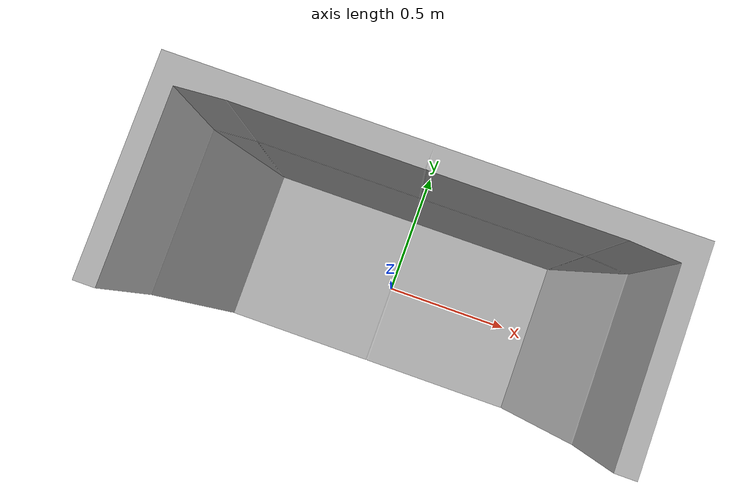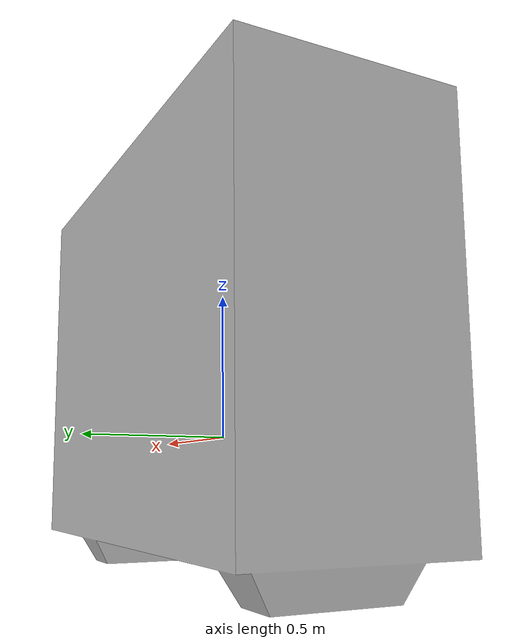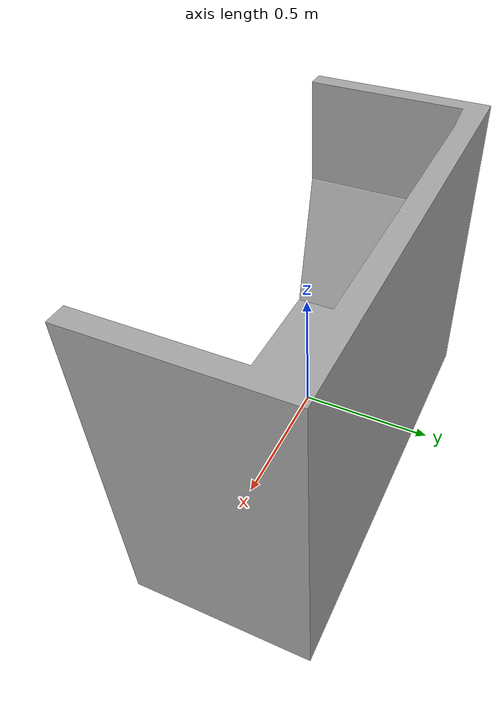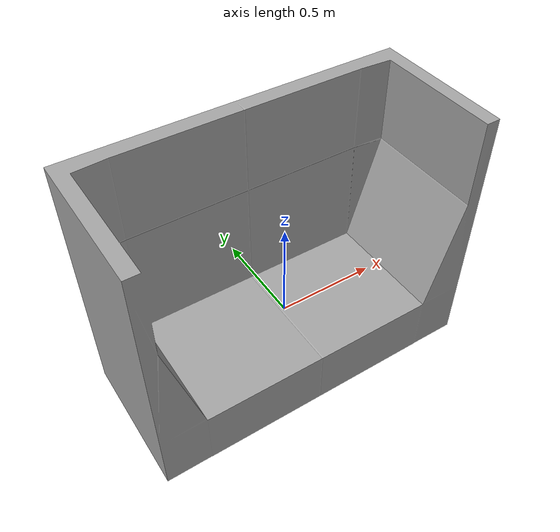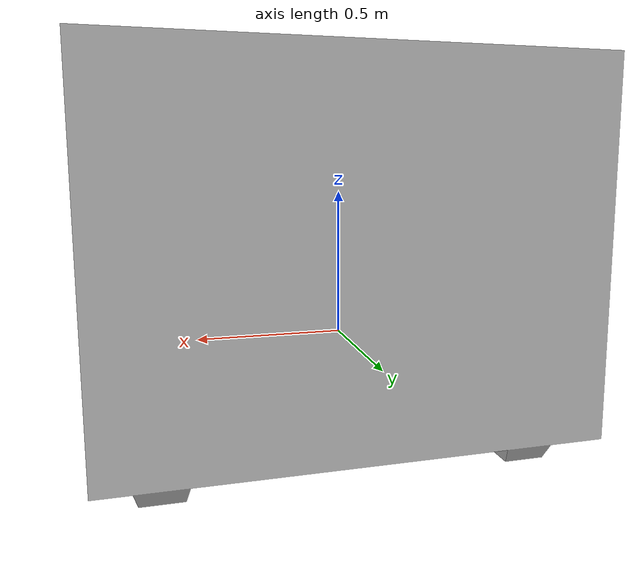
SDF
<?xml version='1.0'?>
<sdf version='1.5'>
    <model name="403_sofa">
        <pose>0 0 0 0 0 0</pose>
        <static>false</static>
        <link name='model_body'>
            <visual name="visual">
                <geometry>
                    <mesh>
                        <uri>model://rs_gazebo/meshes/ss_hq4/403_sofa/403_sofa_visual.dae</uri>
                        <scale>1 1 1</scale>
                    </mesh>
                </geometry>
            </visual>

            <collision name="collision">
                <geometry>
                    <mesh>
                        <uri>model://rs_gazebo/meshes/ss_hq4/403_sofa/403_sofa_collision.stl</uri>
                        <scale>1 1 1</scale>
                    </mesh>
                </geometry>
            </collision>

            <inertial>
                <pose> 0 0 0 0 0 0</pose>
                <inertia>
                    <ixx>4.20083333333</ixx>
                    <ixy>0</ixy>
                    <ixz>0</ixz>
                    <iyy>8.06466666667</iyy>
                    <iyz>0</iyz>
                    <izz>5.54416666667</izz>
                </inertia>
                <mass>20.0</mass>
            </inertial>
        </link>
    </model>
</sdf>
